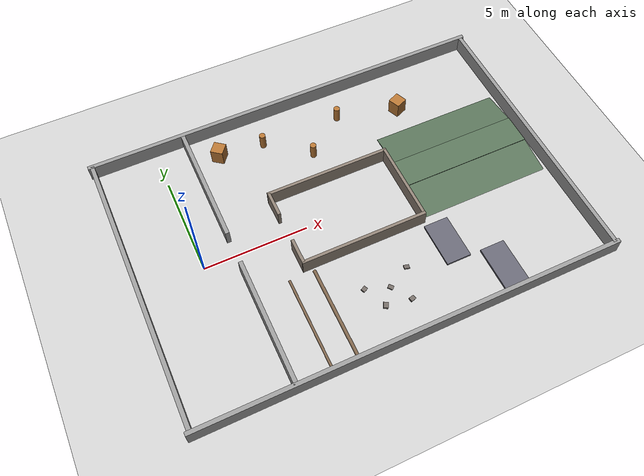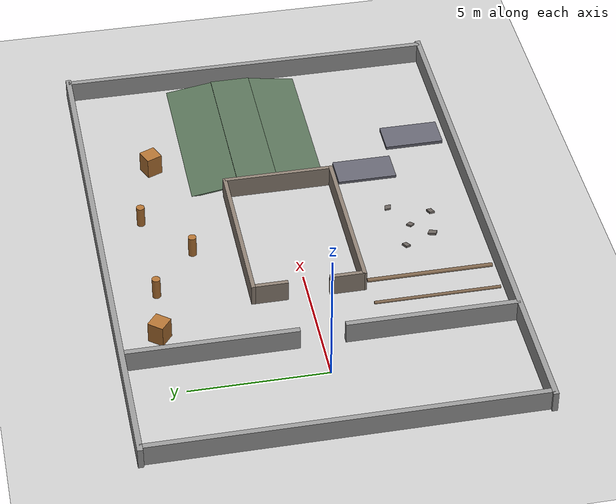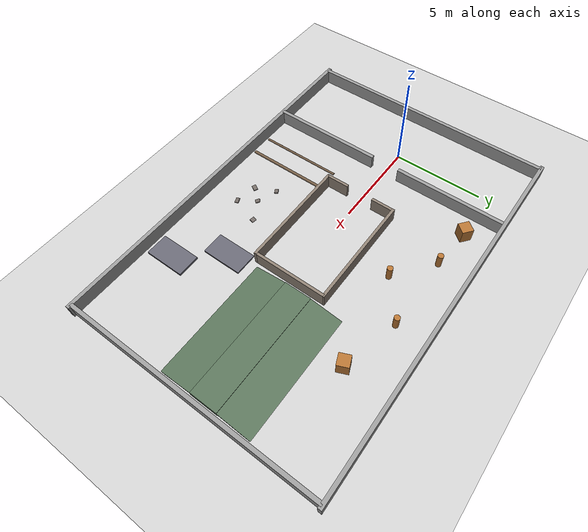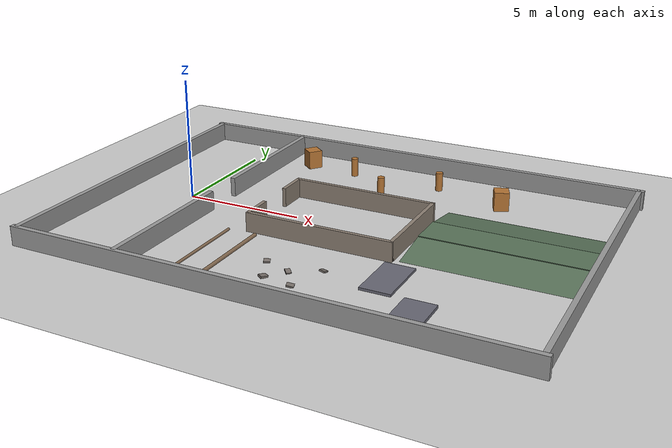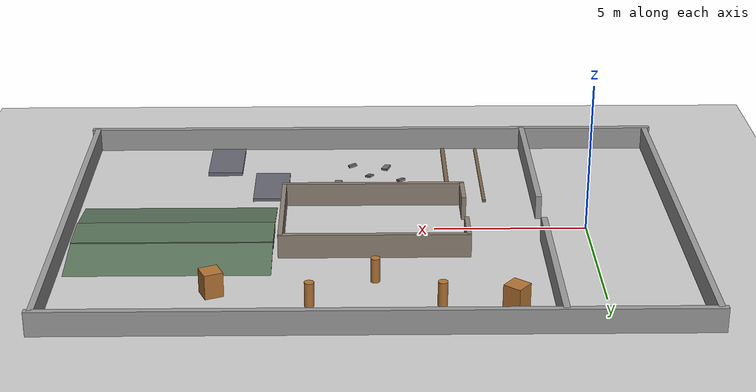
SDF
<?xml version="1.0"?>
<sdf version="1.6">
  <world name="proving_ground">
    <!-- Ignition 不会自动加载 Sensors/Imu/Contact，需显式声明全部 system plugin -->
    <plugin filename="gz-sim-physics-system" name="gz::sim::systems::Physics"/>
    <plugin filename="gz-sim-sensors-system" name="gz::sim::systems::Sensors">
      <render_engine>ogre2</render_engine>
    </plugin>
    <plugin filename="gz-sim-imu-system" name="gz::sim::systems::Imu"/>
    <plugin filename="gz-sim-contact-system" name="gz::sim::systems::Contact"/>
    <plugin filename="gz-sim-scene-broadcaster-system" name="gz::sim::systems::SceneBroadcaster"/>
    <plugin filename="gz-sim-user-commands-system" name="gz::sim::systems::UserCommands"/>

    <!-- model://sun 与 model://ground_plane 走 Fuel 解析，在 Ignition 下
         无法离线获取（Error Code 13），改为内联定义 -->
    <light name="sun" type="directional">
      <cast_shadows>true</cast_shadows>
      <pose>0 0 10 0 0 0</pose>
      <diffuse>0.8 0.8 0.8 1</diffuse>
      <specular>0.2 0.2 0.2 1</specular>
      <direction>-0.5 0.1 -0.9</direction>
    </light>

    <model name="ground_plane">
      <static>true</static>
      <link name="link">
        <collision name="collision">
          <geometry><plane><normal>0 0 1</normal><size>100 100</size></plane></geometry>
          <surface><friction><ode><mu>1.0</mu><mu2>1.0</mu2></ode></friction></surface>
        </collision>
        <visual name="visual">
          <geometry><plane><normal>0 0 1</normal><size>100 100</size></plane></geometry>
          <material><ambient>0.8 0.8 0.8 1</ambient><diffuse>0.8 0.8 0.8 1</diffuse></material>
        </visual>
      </link>
    </model>

    <physics type="ode">
      <max_step_size>0.001</max_step_size>
      <real_time_update_rate>1000</real_time_update_rate>
    </physics>

    <!-- ======== 外墙：x∈[-3,17] y∈[-7,7]，SLAM 全局参照 ======== -->
    <model name="wall_n">
      <static>true</static>
      <pose>7 7 0.4 0 0 0</pose>
      <link name="link">
        <collision name="c"><geometry><box><size>20.4 0.2 0.8</size></box></geometry></collision>
        <visual name="v"><geometry><box><size>20.4 0.2 0.8</size></box></geometry>
          <material><ambient>0.6 0.6 0.6 1</ambient><diffuse>0.6 0.6 0.6 1</diffuse></material></visual>
      </link>
    </model>
    <model name="wall_s">
      <static>true</static>
      <pose>7 -7 0.4 0 0 0</pose>
      <link name="link">
        <collision name="c"><geometry><box><size>20.4 0.2 0.8</size></box></geometry></collision>
        <visual name="v"><geometry><box><size>20.4 0.2 0.8</size></box></geometry>
          <material><ambient>0.6 0.6 0.6 1</ambient><diffuse>0.6 0.6 0.6 1</diffuse></material></visual>
      </link>
    </model>
    <model name="wall_w">
      <static>true</static>
      <pose>-3 0 0.4 0 0 0</pose>
      <link name="link">
        <collision name="c"><geometry><box><size>0.2 14 0.8</size></box></geometry></collision>
        <visual name="v"><geometry><box><size>0.2 14 0.8</size></box></geometry>
          <material><ambient>0.6 0.6 0.6 1</ambient><diffuse>0.6 0.6 0.6 1</diffuse></material></visual>
      </link>
    </model>
    <model name="wall_e">
      <static>true</static>
      <pose>17 0 0.4 0 0 0</pose>
      <link name="link">
        <collision name="c"><geometry><box><size>0.2 14 0.8</size></box></geometry></collision>
        <visual name="v"><geometry><box><size>0.2 14 0.8</size></box></geometry>
          <material><ambient>0.6 0.6 0.6 1</ambient><diffuse>0.6 0.6 0.6 1</diffuse></material></visual>
      </link>
    </model>

    <!-- ======== 中央房间 x∈[4,10] y∈[-2,2]，西墙开 1.5m 门 ======== -->
    <model name="island_n">
      <static>true</static>
      <pose>7 2 0.4 0 0 0</pose>
      <link name="link">
        <collision name="c"><geometry><box><size>6.15 0.15 0.8</size></box></geometry></collision>
        <visual name="v"><geometry><box><size>6.15 0.15 0.8</size></box></geometry>
          <material><ambient>0.55 0.5 0.45 1</ambient><diffuse>0.55 0.5 0.45 1</diffuse></material></visual>
      </link>
    </model>
    <model name="island_s">
      <static>true</static>
      <pose>7 -2 0.4 0 0 0</pose>
      <link name="link">
        <collision name="c"><geometry><box><size>6.15 0.15 0.8</size></box></geometry></collision>
        <visual name="v"><geometry><box><size>6.15 0.15 0.8</size></box></geometry>
          <material><ambient>0.55 0.5 0.45 1</ambient><diffuse>0.55 0.5 0.45 1</diffuse></material></visual>
      </link>
    </model>
    <model name="island_e">
      <static>true</static>
      <pose>10 0 0.4 0 0 0</pose>
      <link name="link">
        <collision name="c"><geometry><box><size>0.15 4 0.8</size></box></geometry></collision>
        <visual name="v"><geometry><box><size>0.15 4 0.8</size></box></geometry>
          <material><ambient>0.55 0.5 0.45 1</ambient><diffuse>0.55 0.5 0.45 1</diffuse></material></visual>
      </link>
    </model>
    <model name="island_w_lower">
      <static>true</static>
      <pose>4 -1.375 0.4 0 0 0</pose>
      <link name="link">
        <collision name="c"><geometry><box><size>0.15 1.25 0.8</size></box></geometry></collision>
        <visual name="v"><geometry><box><size>0.15 1.25 0.8</size></box></geometry>
          <material><ambient>0.55 0.5 0.45 1</ambient><diffuse>0.55 0.5 0.45 1</diffuse></material></visual>
      </link>
    </model>
    <model name="island_w_upper">
      <static>true</static>
      <pose>4 1.375 0.4 0 0 0</pose>
      <link name="link">
        <collision name="c"><geometry><box><size>0.15 1.25 0.8</size></box></geometry></collision>
        <visual name="v"><geometry><box><size>0.15 1.25 0.8</size></box></geometry>
          <material><ambient>0.55 0.5 0.45 1</ambient><diffuse>0.55 0.5 0.45 1</diffuse></material></visual>
      </link>
    </model>

    <!-- ======== 西侧窄门 x=1.5，gap y∈[-0.8,0.8]=1.6m（回环闭合点） ======== -->
    <model name="gate_n">
      <static>true</static>
      <pose>1.5 3.9 0.4 0 0 0</pose>
      <link name="link">
        <collision name="c"><geometry><box><size>0.2 6.2 0.8</size></box></geometry></collision>
        <visual name="v"><geometry><box><size>0.2 6.2 0.8</size></box></geometry>
          <material><ambient>0.6 0.6 0.6 1</ambient><diffuse>0.6 0.6 0.6 1</diffuse></material></visual>
      </link>
    </model>
    <model name="gate_s">
      <static>true</static>
      <pose>1.5 -3.9 0.4 0 0 0</pose>
      <link name="link">
        <collision name="c"><geometry><box><size>0.2 6.2 0.8</size></box></geometry></collision>
        <visual name="v"><geometry><box><size>0.2 6.2 0.8</size></box></geometry>
          <material><ambient>0.6 0.6 0.6 1</ambient><diffuse>0.6 0.6 0.6 1</diffuse></material></visual>
      </link>
    </model>

    <!-- ======== 南廊：减速带 + 碎石场 + 单侧台阶（横贯，无法绕行） ======== -->
    <model name="bump_1">
      <static>true</static>
      <pose>3.2 -4.5 0 0 0 0</pose>
      <link name="link">
        <collision name="c"><geometry><cylinder><radius>0.06</radius><length>4.6</length></cylinder></geometry></collision>
        <visual name="v"><geometry><cylinder><radius>0.06</radius><length>4.6</length></cylinder></geometry>
          <material><ambient>0.5 0.4 0.3 1</ambient><diffuse>0.5 0.4 0.3 1</diffuse></material></visual>
        <pose>0 0 0 1.5708 0 0</pose>
      </link>
    </model>
    <model name="bump_2">
      <static>true</static>
      <pose>4.4 -4.5 0 0 0 0</pose>
      <link name="link">
        <collision name="c"><geometry><cylinder><radius>0.08</radius><length>4.6</length></cylinder></geometry></collision>
        <visual name="v"><geometry><cylinder><radius>0.08</radius><length>4.6</length></cylinder></geometry>
          <material><ambient>0.5 0.4 0.3 1</ambient><diffuse>0.5 0.4 0.3 1</diffuse></material></visual>
        <pose>0 0 0 1.5708 0 0</pose>
      </link>
    </model>
    <model name="rubble_1">
      <static>true</static>
      <pose>6.0 -4.0 0.03 0.2 0.1 0.5</pose>
      <link name="link">
        <collision name="c"><geometry><box><size>0.25 0.2 0.07</size></box></geometry></collision>
        <visual name="v"><geometry><box><size>0.25 0.2 0.07</size></box></geometry>
          <material><ambient>0.45 0.42 0.4 1</ambient><diffuse>0.45 0.42 0.4 1</diffuse></material></visual>
      </link>
    </model>
    <model name="rubble_2">
      <static>true</static>
      <pose>6.5 -5.1 0.03 0.1 0.15 1.1</pose>
      <link name="link">
        <collision name="c"><geometry><box><size>0.3 0.22 0.08</size></box></geometry></collision>
        <visual name="v"><geometry><box><size>0.3 0.22 0.08</size></box></geometry>
          <material><ambient>0.45 0.42 0.4 1</ambient><diffuse>0.45 0.42 0.4 1</diffuse></material></visual>
      </link>
    </model>
    <model name="rubble_3">
      <static>true</static>
      <pose>7.1 -4.4 0.025 0.25 0.05 0.8</pose>
      <link name="link">
        <collision name="c"><geometry><box><size>0.2 0.25 0.06</size></box></geometry></collision>
        <visual name="v"><geometry><box><size>0.2 0.25 0.06</size></box></geometry>
          <material><ambient>0.45 0.42 0.4 1</ambient><diffuse>0.45 0.42 0.4 1</diffuse></material></visual>
      </link>
    </model>
    <model name="rubble_4">
      <static>true</static>
      <pose>7.7 -5.3 0.03 0.15 0.2 0.3</pose>
      <link name="link">
        <collision name="c"><geometry><box><size>0.28 0.2 0.07</size></box></geometry></collision>
        <visual name="v"><geometry><box><size>0.28 0.2 0.07</size></box></geometry>
          <material><ambient>0.45 0.42 0.4 1</ambient><diffuse>0.45 0.42 0.4 1</diffuse></material></visual>
      </link>
    </model>
    <model name="rubble_5">
      <static>true</static>
      <pose>8.2 -3.8 0.025 0.1 0.25 1.4</pose>
      <link name="link">
        <collision name="c"><geometry><box><size>0.22 0.25 0.06</size></box></geometry></collision>
        <visual name="v"><geometry><box><size>0.22 0.25 0.06</size></box></geometry>
          <material><ambient>0.45 0.42 0.4 1</ambient><diffuse>0.45 0.42 0.4 1</diffuse></material></visual>
      </link>
    </model>
    <!-- 左/右单侧台阶：只压一侧轮，考验侧倾调平 -->
    <model name="half_step_l">
      <static>true</static>
      <pose>10.5 -3.4 0.05 0 0 0</pose>
      <link name="link">
        <collision name="c"><geometry><box><size>1.2 2.2 0.10</size></box></geometry></collision>
        <visual name="v"><geometry><box><size>1.2 2.2 0.10</size></box></geometry>
          <material><ambient>0.4 0.4 0.45 1</ambient><diffuse>0.4 0.4 0.45 1</diffuse></material></visual>
      </link>
    </model>
    <model name="half_step_r">
      <static>true</static>
      <pose>12.2 -5.6 0.06 0 0 0</pose>
      <link name="link">
        <collision name="c"><geometry><box><size>1.2 2.2 0.12</size></box></geometry></collision>
        <visual name="v"><geometry><box><size>1.2 2.2 0.12</size></box></geometry>
          <material><ambient>0.4 0.4 0.45 1</ambient><diffuse>0.4 0.4 0.45 1</diffuse></material></visual>
      </link>
    </model>

    <!-- ======== 东廊：斜坡-平台-斜坡 横贯（行进方向 +y，俯仰调平） ======== -->
    <model name="ramp_up">
      <static>true</static>
      <pose>13.5 -1.0 0.075 0 -0.15 1.5708</pose>
      <link name="link">
        <collision name="c"><geometry><box><size>2.0 6.5 0.05</size></box></geometry></collision>
        <visual name="v"><geometry><box><size>2.0 6.5 0.05</size></box></geometry>
          <material><ambient>0.35 0.45 0.35 1</ambient><diffuse>0.35 0.45 0.35 1</diffuse></material></visual>
      </link>
    </model>
    <model name="plateau">
      <static>true</static>
      <pose>13.5 0.7 0.1375 0 0 1.5708</pose>
      <link name="link">
        <collision name="c"><geometry><box><size>1.5 6.5 0.275</size></box></geometry></collision>
        <visual name="v"><geometry><box><size>1.5 6.5 0.275</size></box></geometry>
          <material><ambient>0.35 0.45 0.35 1</ambient><diffuse>0.35 0.45 0.35 1</diffuse></material></visual>
      </link>
    </model>
    <model name="ramp_down">
      <static>true</static>
      <pose>13.5 2.4 0.075 0 0.15 1.5708</pose>
      <link name="link">
        <collision name="c"><geometry><box><size>2.0 6.5 0.05</size></box></geometry></collision>
        <visual name="v"><geometry><box><size>2.0 6.5 0.05</size></box></geometry>
          <material><ambient>0.35 0.45 0.35 1</ambient><diffuse>0.35 0.45 0.35 1</diffuse></material></visual>
      </link>
    </model>

    <!-- ======== 北廊：立柱迷阵 + 箱体（高 0.8，雷达可见，Nav2 避障） ======== -->
    <model name="pillar_1">
      <static>true</static>
      <pose>9 5.3 0.4 0 0 0</pose>
      <link name="link">
        <collision name="c"><geometry><cylinder><radius>0.15</radius><length>0.8</length></cylinder></geometry></collision>
        <visual name="v"><geometry><cylinder><radius>0.15</radius><length>0.8</length></cylinder></geometry>
          <material><ambient>0.7 0.45 0.2 1</ambient><diffuse>0.7 0.45 0.2 1</diffuse></material></visual>
      </link>
    </model>
    <model name="pillar_2">
      <static>true</static>
      <pose>7 3.7 0.4 0 0 0</pose>
      <link name="link">
        <collision name="c"><geometry><cylinder><radius>0.15</radius><length>0.8</length></cylinder></geometry></collision>
        <visual name="v"><geometry><cylinder><radius>0.15</radius><length>0.8</length></cylinder></geometry>
          <material><ambient>0.7 0.45 0.2 1</ambient><diffuse>0.7 0.45 0.2 1</diffuse></material></visual>
      </link>
    </model>
    <model name="pillar_3">
      <static>true</static>
      <pose>5 5.3 0.4 0 0 0</pose>
      <link name="link">
        <collision name="c"><geometry><cylinder><radius>0.15</radius><length>0.8</length></cylinder></geometry></collision>
        <visual name="v"><geometry><cylinder><radius>0.15</radius><length>0.8</length></cylinder></geometry>
          <material><ambient>0.7 0.45 0.2 1</ambient><diffuse>0.7 0.45 0.2 1</diffuse></material></visual>
      </link>
    </model>
    <model name="crate_1">
      <static>true</static>
      <pose>12 4.5 0.4 0 0 0.4</pose>
      <link name="link">
        <collision name="c"><geometry><box><size>0.6 0.6 0.8</size></box></geometry></collision>
        <visual name="v"><geometry><box><size>0.6 0.6 0.8</size></box></geometry>
          <material><ambient>0.7 0.45 0.2 1</ambient><diffuse>0.7 0.45 0.2 1</diffuse></material></visual>
      </link>
    </model>
    <model name="crate_2">
      <static>true</static>
      <pose>2.8 5.5 0.4 0 0 0.9</pose>
      <link name="link">
        <collision name="c"><geometry><box><size>0.6 0.6 0.8</size></box></geometry></collision>
        <visual name="v"><geometry><box><size>0.6 0.6 0.8</size></box></geometry>
          <material><ambient>0.7 0.45 0.2 1</ambient><diffuse>0.7 0.45 0.2 1</diffuse></material></visual>
      </link>
    </model>

  </world>
</sdf>
